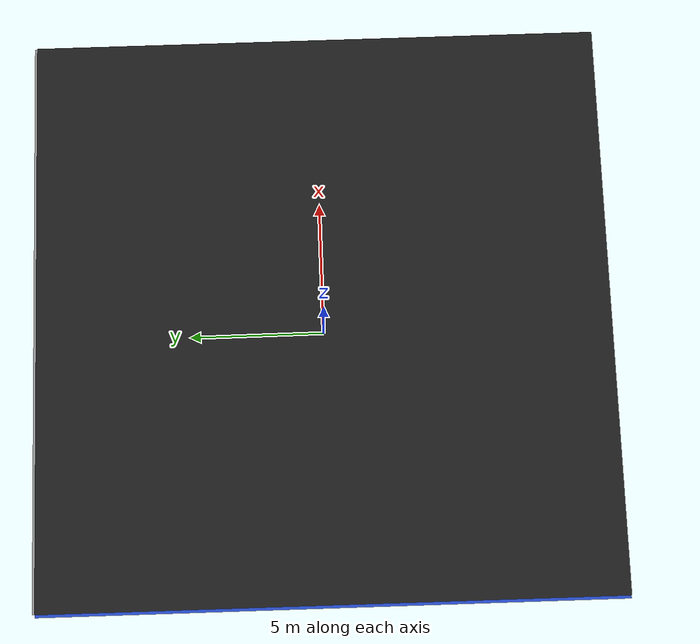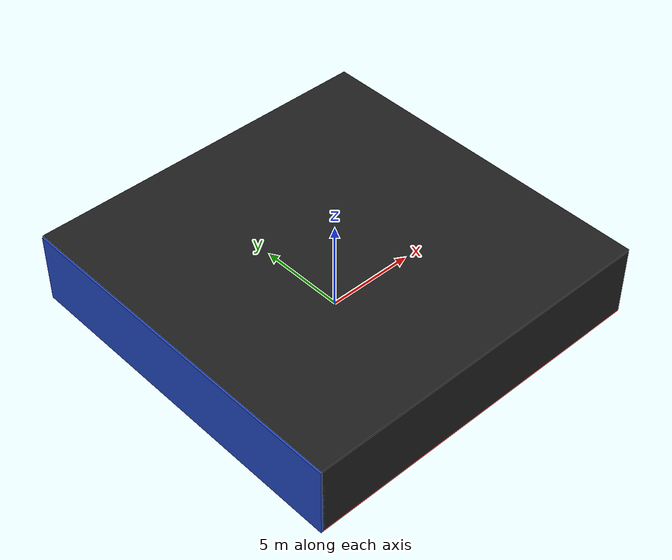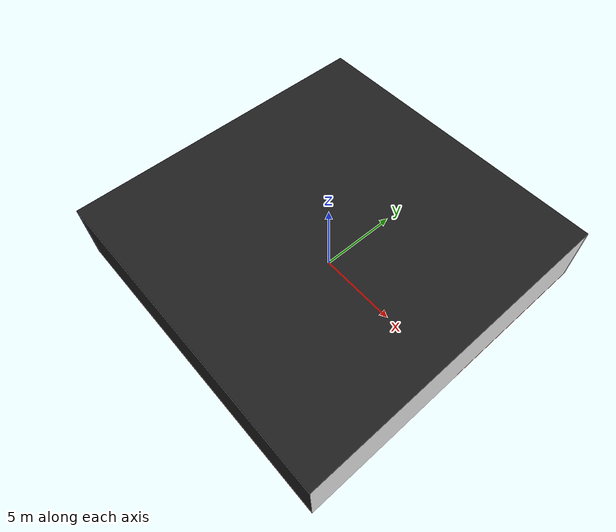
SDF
<sdf version="1.4">
 <world name="default">
  <physics type="ode">
   <max_step_size>0.001</max_step_size>
   <real_time_factor>1</real_time_factor>
   <real_time_update_rate>1000</real_time_update_rate>
   <gravity>0 0 -9.8</gravity>
  </physics>
  <scene><ambient>0.4 0.4 0.4 1</ambient><background>0.7 0.7 0.7 1</background><shadows>1</shadows></scene>
  <model name="Surrounding">
   <static>1</static>
   <link name="Ceiling">
    <collision name="Ceiling_Collision"><geometry><box><size>20 20 0.1</size></box></geometry></collision>
    <visual name="Ceiling_Visual">
     <geometry><box><size>20 20 0.1</size></box></geometry>
     <material>
      <script><uri>file://media/materials/scripts/gazebo.material</uri><name>Gazebo/Black</name></script>
     </material>
    </visual>
    <pose>0 0 4.05 0 0 0</pose>
   </link>
   <link name="Wall_South">
    <collision name="Wall_South_Collision">
     <geometry><box><size>20 0 4</size></box></geometry>
     <pose>0 0 2 0 -0 0</pose>
    </collision>
    <visual name="Wall_South_Visual">
     <pose>0 0 2 0 -0 0</pose>
     <geometry><box><size>20 0 4</size></box></geometry>
     <material>
      <script><uri>file://media/materials/scripts/gazebo.material</uri><name>Gazebo/Black</name></script>
     </material>
    </visual>
    <velocity_decay><linear>0</linear><angular>0</angular></velocity_decay>
    <pose>0 -10 0 0 -0 0</pose>
   </link>
   <link name="Wall_East">
    <collision name="Wall_21_Collision">
     <geometry><box><size>20 0 4</size></box></geometry>
     <pose>0 0 2 0 -0 0</pose>
    </collision>
    <visual name="Wall_21_Visual">
     <pose>0 0 2 0 -0 0</pose>
     <geometry><box><size>20 0 4</size></box></geometry>
     <material>
      <script><uri>file://media/materials/scripts/gazebo.material</uri><name>Gazebo/White</name></script>
     </material>
    </visual>
    <velocity_decay><linear>0</linear><angular>0</angular></velocity_decay>
    <pose>10 0 0 0 -0 1.5708</pose>
   </link>
   <link name="Wall_North">
    <collision name="Wall_22_Collision">
     <geometry><box><size>20 0.2 4</size></box></geometry>
     <pose>0 0 2 0 -0 0</pose>
    </collision>
    <visual name="Wall_22_Visual">
     <pose>0 0 2 0 -0 0</pose>
     <geometry><box><size>20 0.2 4</size></box></geometry>
     <material>
      <script><uri>file://media/materials/scripts/gazebo.material</uri><name>Gazebo/Grey</name></script>
     </material>
    </visual>
    <velocity_decay><linear>0</linear><angular>0</angular></velocity_decay>
    <pose>0 10 0 0 -0 0</pose>
   </link>
   <link name="Wall_West">
    <collision name="Wall_23_Collision">
     <geometry><box><size>20 0.2 4</size></box></geometry>
     <pose>0 0 2 0 -0 0</pose>
    </collision>
    <visual name="Wall_23_Visual">
     <pose>0 0 2 0 -0 0</pose>
     <geometry><box><size>20 0.2 4</size></box></geometry>
     <material>
      <script><uri>file://media/materials/scripts/gazebo.material</uri><name>Gazebo/BlueLaser</name></script>
     </material>
    </visual>
    <velocity_decay><linear>0</linear><angular>0</angular></velocity_decay>
    <pose>-10 0 0 0 0 -1.5708</pose>
   </link>
   <link name="Ground_link">
    <collision name="collision">
     <pose>0 0 .05 0 -0 0</pose>
     <geometry><box><size>20 20 0.1</size></box></geometry>
    </collision>
    <visual name="visual">
     <pose>0 0 .05 0 -0 0</pose>
     <geometry><box><size>20 20 0.1</size></box></geometry>
     <material>
      <script><uri>file://media/materials/scripts/gazebo.material</uri><name>Gazebo/RedGlow</name></script>
     </material>
    </visual>
   </link>
   <static>1</static>
  </model>
  <spherical_coordinates>
   <surface_model>EARTH_WGS84</surface_model>
   <latitude_deg>0</latitude_deg>
   <longitude_deg>0</longitude_deg>
   <elevation>0</elevation>
   <heading_deg>0</heading_deg>
  </spherical_coordinates>
  <light name="lightball_0" type="diffuse">
   <diffuse>0.8 0.8 0.8 1</diffuse>
   <specular>0.2 0.2 0.2 1</specular>
   <attenuation>
    <range>100</range>
    <constant>0.7</constant>
    <linear>0.01</linear>
    <quadratic>0.001</quadratic>
   </attenuation>
   <direction>-0.5 0.1 -0.9</direction>
   <pose>-2.27673790892 1.20863424441 1.21165664984 0 0 0</pose>
  </light>
  <light name="lightball_1" type="diffuse">
   <diffuse>0.8 0.8 0.8 1</diffuse>
   <specular>0.2 0.2 0.2 1</specular>
   <attenuation>
    <range>100</range>
    <constant>0.7</constant>
    <linear>0.01</linear>
    <quadratic>0.001</quadratic>
   </attenuation>
   <direction>-0.5 0.1 -0.9</direction>
   <pose>9.59314793061 2.40807026751 2.60373546382 0 0 0</pose>
  </light>
  <light name="lightball_2" type="diffuse">
   <diffuse>0.8 0.8 0.8 1</diffuse>
   <specular>0.2 0.2 0.2 1</specular>
   <attenuation>
    <range>100</range>
    <constant>0.7</constant>
    <linear>0.01</linear>
    <quadratic>0.001</quadratic>
   </attenuation>
   <direction>-0.5 0.1 -0.9</direction>
   <pose>-6.42912543714 -2.15239914281 0.740031583214 0 0 0</pose>
  </light>
  <light name="lightball_3" type="diffuse">
   <diffuse>0.8 0.8 0.8 1</diffuse>
   <specular>0.2 0.2 0.2 1</specular>
   <attenuation>
    <range>100</range>
    <constant>0.7</constant>
    <linear>0.01</linear>
    <quadratic>0.001</quadratic>
   </attenuation>
   <direction>-0.5 0.1 -0.9</direction>
   <pose>-4.34188245585 1.46914148518 1.07168510542 0 0 0</pose>
  </light>
  <light name="lightball_4" type="diffuse">
   <diffuse>0.8 0.8 0.8 1</diffuse>
   <specular>0.2 0.2 0.2 1</specular>
   <attenuation>
    <range>100</range>
    <constant>0.7</constant>
    <linear>0.01</linear>
    <quadratic>0.001</quadratic>
   </attenuation>
   <direction>-0.5 0.1 -0.9</direction>
   <pose>-8.50341099383 2.8838001336 1.67005057388 0 0 0</pose>
  </light>
  <include><uri>model://cabinet</uri><pose>-8.0082278782 -3.84637327064 0 0 0 1.93179781177</pose></include>
  <include>
   <uri>model://robocup_3Dsim_goal</uri>
   <pose>-7.75467519348 -1.32097057811 0 0 0 0.154306790501</pose>
  </include>
  <include><uri>model://table</uri><pose>-7.99012969512 0.826575309945 0 0 0 0.913204325084</pose></include>
  <include>
   <uri>model://robocup_3Dsim_goal</uri>
   <pose>-5.21608106642 -7.15475548237 0 0 0 1.75397411838</pose>
  </include>
  <include>
   <uri>model://textured_shapes</uri>
   <pose>-5.06609484517 1.20579962994 0 0 0 2.2602524053</pose>
  </include>
  <include><uri>model://cabinet</uri><pose>-5.25436200699 7.62351908011 0 0 0 2.0083694877</pose></include>
  <include><uri>model://table</uri><pose>-0.814906845543 7.47393524737 0 0 0 2.76743930599</pose></include>
  <include><uri>model://cabinet</uri><pose>4.73945304684 -8.21165024 0 0 0 0.0104266752577</pose></include>
  <include>
   <uri>model://construction_cone</uri>
   <pose>4.19268850552 -2.09277339355 0 0 0 0.706675595439</pose>
  </include>
 </world>
</sdf>

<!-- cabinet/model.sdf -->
<sdf version="1.5">
  <model name="cabinet">
    <static>true</static>
    <link name="cabinet_bottom_plate">
      <inertial>
        <pose>0 0 -1 0 0 0</pose>
        <inertia>
          <ixx>2.050000</ixx>
          <ixy>0</ixy>
          <ixz>0</ixz>
          <iyy>2.050000</iyy>
          <iyz>0</iyz>
          <izz>2.050000</izz>
        </inertia>
        <mass>25.000000</mass>
      </inertial>
      <collision name="cabinet_bottom_plate_geom">
        <pose>0 0 0.010000 0 0 0</pose>
        <geometry>
          <box>
            <size>0.450000 0.450000 0.020000</size>
          </box>
        </geometry>
      </collision>
      <visual name="cabinet_bottom_plate_geom_visual">
        <pose>0 0 0.010000 0 0 0</pose>
        <geometry>
          <box>
            <size>0.450000 0.450000 0.020000</size>
          </box>
        </geometry>
        <material>
          <script>
            <uri>model://media/materials/scripts/gazebo.material</uri>
            <name>Gazebo/Wood</name>
          </script>
        </material>
      </visual>
      <collision name="cabinet_bottom_plate_geom_cabinet_back_plate">
        <pose>0.235000 0 0.510000 0 0 0</pose>
        <geometry>
          <box>
            <size>0.020000 0.450000 1.020000</size>
          </box>
        </geometry>
      </collision>
      <visual name="cabinet_bottom_plate_geom_cabinet_back_plate_visual">
        <pose>0.235000 0 0.510000 0 0 0</pose>
        <geometry>
          <box>
            <size>0.020000 0.450000 1.020000</size>
          </box>
        </geometry>
        <material>
          <script>
            <uri>model://media/materials/scripts/gazebo.material</uri>
            <name>Gazebo/Wood</name>
          </script>
        </material>
      </visual>
      <collision name="cabinet_bottom_plate_geom_cabinet_left_plate">
        <pose>0 0.235000 0.510000 0 0 0</pose>
        <geometry>
          <box>
            <size>0.450000 0.020000 1.020000</size>
          </box>
        </geometry>
      </collision>
      <visual name="cabinet_bottom_plate_geom_cabinet_left_plate_visual">
        <pose>0 0.235000 0.510000 0 0 0</pose>
        <geometry>
          <box>
            <size>0.450000 0.020000 1.020000</size>
          </box>
        </geometry>
        <material>
          <script>
            <uri>model://media/materials/scripts/gazebo.material</uri>
            <name>Gazebo/Wood</name>
          </script>
        </material>
      </visual>
      <collision name="cabinet_bottom_plate_geom_cabinet_middle_plate">
        <pose>0 0 0.510000 0 0 0</pose>
        <geometry>
          <box>
            <size>0.450000 0.450000 0.020000</size>
          </box>
        </geometry>
      </collision>
      <visual name="cabinet_bottom_plate_geom_cabinet_middle_plate_visual">
        <pose>0 0 0.510000 0 0 0</pose>
        <geometry>
          <box>
            <size>0.450000 0.450000 0.020000</size>
          </box>
        </geometry>
        <material>
          <script>
            <uri>model://media/materials/scripts/gazebo.material</uri>
            <name>Gazebo/Wood</name>
          </script>
        </material>
      </visual>
      <collision name="cabinet_bottom_plate_geom_cabinet_right_plate">
        <pose>0 -0.235000 0.510000 0 0 0</pose>
        <geometry>
          <box>
            <size>0.450000 0.020000 1.020000</size>
          </box>
        </geometry>
      </collision>
      <visual name="cabinet_bottom_plate_geom_cabinet_right_plate_visual">
        <pose>0 -0.235000 0.510000 0 0 0</pose>
        <geometry>
          <box>
            <size>0.450000 0.020000 1.020000</size>
          </box>
        </geometry>
        <material>
          <script>
            <uri>model://media/materials/scripts/gazebo.material</uri>
            <name>Gazebo/Wood</name>
          </script>
        </material>
      </visual>
      <collision name="cabinet_bottom_plate_geom_cabinet_top_plate">
        <pose>0 0 1.010000 0 0 0</pose>
        <geometry>
          <box>
            <size>0.450000 0.450000 0.020000</size>
          </box>
        </geometry>
      </collision>
      <visual name="cabinet_bottom_plate_geom_cabinet_top_plate_visual">
        <pose>0 0 1.010000 0 0 0</pose>
        <geometry>
          <box>
            <size>0.450000 0.450000 0.020000</size>
          </box>
        </geometry>
        <material>
          <script>
            <uri>model://media/materials/scripts/gazebo.material</uri>
            <name>Gazebo/Wood</name>
          </script>
        </material>
      </visual>
    </link>
  </model>
</sdf>

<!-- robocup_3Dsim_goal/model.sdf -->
<sdf version="1.5">
  <model name="robocup_3d_goal">
    <static>true</static>
    <link name="left_post">
      <pose>0 1.05 0.45 0 0 0</pose>
      <collision name="collision">
        <geometry>
          <cylinder>
            <radius>0.05</radius>
            <length>0.9</length>
          </cylinder>
        </geometry>
      </collision>
      <visual name="visual">
        <geometry>
          <cylinder>
            <radius>0.05</radius>
            <length>0.9</length>
          </cylinder>
        </geometry>
        <material>
          <script>
            <uri>file://media/materials/scripts/gazebo.material</uri>
            <name>Gazebo/ZincYellow</name>
          </script>
        </material>
      </visual>
    </link>
    <link name="left_support_horiz_lower">
      <pose>0.30 1.05 0.01 0 0 0</pose>
      <collision name="collision">
        <geometry>
          <box>
            <size>0.50 0.02 0.02</size>
          </box>
        </geometry>
      </collision>
      <visual name="visual">
        <geometry>
          <box>
            <size>0.50 0.02 0.02</size>
          </box>
        </geometry>
        <material>
          <script>
            <uri>file://media/materials/scripts/gazebo.material</uri>
            <name>Gazebo/White</name>
          </script>
        </material>
      </visual>
    </link>
    <link name="left_support_horiz_upper">
      <pose>0.30 1.05 0.79 0 0 0</pose>
      <collision name="collision">
        <geometry>
          <box>
            <size>0.50 0.02 0.02</size>
          </box>
        </geometry>
      </collision>
      <visual name="visual">
        <geometry>
          <box>
            <size>0.50 0.02 0.02</size>
          </box>
        </geometry>
        <material>
          <script>
            <uri>file://media/materials/scripts/gazebo.material</uri>
            <name>Gazebo/White</name>
          </script>
        </material>
      </visual>
    </link>
    <link name="left_support_vertical">
      <pose>0.56 1.05 0.4 0 1.5708 0</pose>
      <collision name="collision">
        <geometry>
          <box>
            <size>0.80 0.02 0.02</size>
          </box>
        </geometry>
      </collision>
      <visual name="visual">
        <geometry>
          <box>
            <size>0.80 0.02 0.02</size>
          </box>
        </geometry>
        <material>
          <script>
            <uri>file://media/materials/scripts/gazebo.material</uri>
            <name>Gazebo/White</name>
          </script>
        </material>
      </visual>
    </link>
    <link name="right_support_horiz_lower">
      <pose>0.30 -1.05 0.01 0 0 0</pose>
      <collision name="collision">
        <geometry>
          <box>
            <size>0.50 0.02 0.02</size>
          </box>
        </geometry>
      </collision>
      <visual name="visual">
        <geometry>
          <box>
            <size>0.50 0.02 0.02</size>
          </box>
        </geometry>
        <material>
          <script>
            <uri>file://media/materials/scripts/gazebo.material</uri>
            <name>Gazebo/White</name>
          </script>
        </material>
      </visual>
    </link>
    <link name="right_support_horiz_upper">
      <pose>0.30 -1.05 0.79 0 0 0</pose>
      <collision name="collision">
        <geometry>
          <box>
            <size>0.50 0.02 0.02</size>
          </box>
        </geometry>
      </collision>
      <visual name="visual">
        <geometry>
          <box>
            <size>0.50 0.02 0.02</size>
          </box>
        </geometry>
        <material>
          <script>
            <uri>file://media/materials/scripts/gazebo.material</uri>
            <name>Gazebo/White</name>
          </script>
        </material>
      </visual>
    </link>
    <link name="right_support_vertical">
      <pose>0.56 -1.05 0.4 0 1.5708 0</pose>
      <collision name="collision">
        <geometry>
          <box>
            <size>0.80 0.02 0.02</size>
          </box>
        </geometry>
      </collision>
      <visual name="visual">
        <geometry>
          <box>
            <size>0.80 0.02 0.02</size>
          </box>
        </geometry>
        <material>
          <script>
            <uri>file://media/materials/scripts/gazebo.material</uri>
            <name>Gazebo/White</name>
          </script>
        </material>
      </visual>
    </link>
    <link name="center_support_horiz_lower">
      <pose>0.56 0 0.01 0 1.5708 0</pose>
      <collision name="collision">
        <geometry>
          <box>
            <size>0.02 2.08 0.02</size>
          </box>
        </geometry>
      </collision>
      <visual name="visual">
        <geometry>
          <box>
            <size>0.02 2.08 0.02</size>
          </box>
        </geometry>
        <material>
          <script>
            <uri>file://media/materials/scripts/gazebo.material</uri>
            <name>Gazebo/White</name>
          </script>
        </material>
      </visual>
    </link>
    <link name="center_support_horiz_upper">
      <pose>0.56 0 0.79 0 1.5708 0</pose>
      <collision name="collision">
        <geometry>
          <box>
            <size>0.02 2.08 0.02</size>
          </box>
        </geometry>
      </collision>
      <visual name="visual">
        <geometry>
          <box>
            <size>0.02 2.08 0.02</size>
          </box>
        </geometry>
        <material>
          <script>
            <uri>file://media/materials/scripts/gazebo.material</uri>
            <name>Gazebo/White</name>
          </script>
        </material>
      </visual>
    </link>
    <link name="right_post">
      <pose>0 -1.05 0.45 0 0 0</pose>
      <collision name="collision">
        <geometry>
          <cylinder>
            <radius>0.05</radius>
            <length>0.9</length>
          </cylinder>
        </geometry>
      </collision>
      <visual name="visual">
        <geometry>
          <cylinder>
            <radius>0.05</radius>
            <length>0.9</length>
          </cylinder>
        </geometry>
        <material>
          <script>
            <uri>file://media/materials/scripts/gazebo.material</uri>
            <name>Gazebo/ZincYellow</name>
          </script>
        </material>
      </visual>
    </link>
    <link name="crossbar">
      <pose>0 0 0.85 1.57 1.57 0</pose>
      <collision name="collision">
        <geometry>
          <cylinder>
            <radius>0.05</radius>
            <length>2.0</length>
          </cylinder>
        </geometry>
      </collision>
      <visual name="visual">
        <geometry>
          <cylinder>
            <radius>0.05</radius>
            <length>2.0</length>
          </cylinder>
        </geometry>
        <material>
          <script>
            <uri>file://media/materials/scripts/gazebo.material</uri>
            <name>Gazebo/ZincYellow</name>
          </script>
        </material>
      </visual>
    </link>
    <link name="center_net">
      <pose>0.56 0 0.40 0 0 0</pose>
      <collision name="collision">
        <geometry>
          <box>
            <size>0.01 2.1 0.80</size>
          </box>
        </geometry>
      </collision>
      <visual name="visual">
        <geometry>
          <box>
            <size>0.01 2.1 0.80</size>
          </box>
        </geometry>
        <material>
          <script>
            <uri>model://../model_source/models/robocup09_spl_field/materials/scripts/</uri>
            <uri>model://../model_source/models/robocup09_spl_field/materials/textures/</uri>
            <name>RoboCup/Net</name>
          </script>
        </material>
      </visual>
    </link>
    <link name="left_net">
      <pose>0.30 1.05 0.40 0 0 0</pose>
      <collision name="collision">
        <geometry>
          <box>
            <size>0.50 0.01 0.76</size>
          </box>
        </geometry>
      </collision>
      <visual name="visual">
        <geometry>
          <box>
            <size>0.50 0.01 0.76</size>
          </box>
        </geometry>
        <material>
          <script>
            <uri>model://../model_source/models/robocup09_spl_field/materials/scripts/</uri>
            <uri>model://../model_source/models/robocup09_spl_field/materials/textures/</uri>
            <name>RoboCup/Net</name>
          </script>
        </material>
      </visual>
    </link>
    <link name="right_net">
      <pose>0.30 -1.05 0.40 0 0 0</pose>
      <collision name="collision">
        <geometry>
          <box>
            <size>0.50 0.01 0.76</size>
          </box>
        </geometry>
      </collision>
      <visual name="visual">
        <geometry>
          <box>
            <size>0.50 0.01 0.76</size>
          </box>
        </geometry>
        <material>
          <script>
            <uri>model://../model_source/models/robocup09_spl_field/materials/scripts/</uri>
            <uri>model://../model_source/models/robocup09_spl_field/materials/textures/</uri>
            <name>RoboCup/Net</name>
          </script>
        </material>
      </visual>
    </link>
  </model>
</sdf>

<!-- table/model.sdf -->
<sdf version="1.5">
  <model name="table">
    <static>true</static>
    <link name="link">
      <collision name="surface">
        <pose>0 0 1.0 0 0 0</pose>
        <geometry>
          <box>
            <size>1.5 0.8 0.03</size>
          </box>
        </geometry>
        <surface>
          <friction>
            <ode>
              <mu>0.6</mu>
              <mu2>0.6</mu2>
            </ode>
          </friction>
        </surface>
      </collision>
      <visual name="visual1">
        <pose>0 0 1.0 0 0 0</pose>
        <geometry>
          <box>
            <size>1.5 0.8 0.03</size>
          </box>
        </geometry>
        <material>
          <script>
            <uri>model://media/materials/scripts/gazebo.material</uri>
            <name>Gazebo/Wood</name>
          </script>
        </material>
      </visual>
      <collision name="front_left_leg">
        <pose>0.68 0.38 0.5 0 0 0</pose>
        <geometry>
          <cylinder>
            <radius>0.02</radius>
            <length>1.0</length>
          </cylinder>
        </geometry>
      </collision>
      <visual name="front_left_leg">
        <pose>0.68 0.38 0.5 0 0 0</pose>
        <geometry>
          <cylinder>
            <radius>0.02</radius>
            <length>1.0</length>
          </cylinder>
        </geometry>
        <material>
          <script>
            <uri>model://media/materials/scripts/gazebo.material</uri>
            <name>Gazebo/Grey</name>
          </script>
        </material>
      </visual>
      <collision name="front_right_leg">
        <pose>0.68 -0.38 0.5 0 0 0</pose>
        <geometry>
          <cylinder>
            <radius>0.02</radius>
            <length>1.0</length>
          </cylinder>
        </geometry>
      </collision>
      <visual name="front_right_leg">
        <pose>0.68 -0.38 0.5 0 0 0</pose>
        <geometry>
          <cylinder>
            <radius>0.02</radius>
            <length>1.0</length>
          </cylinder>
        </geometry>
        <material>
          <script>
            <uri>model://media/materials/scripts/gazebo.material</uri>
            <name>Gazebo/Grey</name>
          </script>
        </material>
      </visual>
      <collision name="back_right_leg">
        <pose>-0.68 -0.38 0.5 0 0 0</pose>
        <geometry>
          <cylinder>
            <radius>0.02</radius>
            <length>1.0</length>
          </cylinder>
        </geometry>
      </collision>
      <visual name="back_right_leg">
        <pose>-0.68 -0.38 0.5 0 0 0</pose>
        <geometry>
          <cylinder>
            <radius>0.02</radius>
            <length>1.0</length>
          </cylinder>
        </geometry>
        <material>
          <script>
            <uri>model://media/materials/scripts/gazebo.material</uri>
            <name>Gazebo/Grey</name>
          </script>
        </material>
      </visual>
      <collision name="back_left_leg">
        <pose>-0.68 0.38 0.5 0 0 0</pose>
        <geometry>
          <cylinder>
            <radius>0.02</radius>
            <length>1.0</length>
          </cylinder>
        </geometry>
      </collision>
      <visual name="back_left_leg">
        <pose>-0.68 0.38 0.5 0 0 0</pose>
        <geometry>
          <cylinder>
            <radius>0.02</radius>
            <length>1.0</length>
          </cylinder>
        </geometry>
        <material>
          <script>
            <uri>model://media/materials/scripts/gazebo.material</uri>
            <name>Gazebo/Grey</name>
          </script>
        </material>
      </visual>
    </link>
  </model>
</sdf>

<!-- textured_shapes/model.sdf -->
<sdf version="1.6">
  <model name="textured_shapes">
    <pose>0 0 0.5 0 0 0</pose>
    <link name="box">
      <pose>0 -1.5 0 0 0 0</pose>
      <collision name="collision">
        <geometry>
          <box>
            <size>1 1 1</size>
          </box>
        </geometry>
      </collision>
      <visual name="visual">
        <geometry>
          <box>
            <size>1 1 1</size>
          </box>
        </geometry>
        <material>
          <script>
            <uri>model://../model_source/models/textured_shapes/materials/scripts</uri>
            <uri>model://../model_source/models/textured_shapes/materials/textures</uri>
            <name>TexturedShape/Squares</name>
          </script>
        </material>
      </visual>
    </link>
    <link name="sphere">
      <collision name="collision">
        <geometry>
          <sphere>
            <radius>0.5</radius>
          </sphere>
        </geometry>
      </collision>
      <visual name="visual">
        <geometry>
          <sphere>
            <radius>0.5</radius>
          </sphere>
        </geometry>
        <material>
          <script>
            <uri>model://../model_source/models/textured_shapes/materials/scripts</uri>
            <uri>model://../model_source/models/textured_shapes/materials/textures</uri>
            <name>TexturedShape/Squares</name>
          </script>
        </material>
      </visual>
    </link>
    <link name="cylinder">
      <pose>0 1.5 0 0 0 0</pose>
      <collision name="collision">
        <geometry>
          <cylinder>
            <radius>0.5</radius>
            <length>1</length>
          </cylinder>
        </geometry>
      </collision>
      <visual name="visual">
        <geometry>
          <cylinder>
            <radius>0.5</radius>
            <length>1</length>
          </cylinder>
        </geometry>
        <material>
          <script>
            <uri>model://../model_source/models/textured_shapes/materials/scripts</uri>
            <uri>model://../model_source/models/textured_shapes/materials/textures</uri>
            <name>TexturedShape/Squares</name>
          </script>
        </material>
      </visual>
    </link>
  </model>
</sdf>

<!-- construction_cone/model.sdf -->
<sdf version="1.5">
  <model name="Construction Cone">
    <link name="link">
      <collision name="collision">
        <geometry>
          <mesh>
            <scale>10 10 10</scale>
            <uri>file://isr-testbed/construction_cone/meshes/construction_cone.dae</uri>
          </mesh>
        </geometry>
      </collision>
      <visual name="visual">
        <geometry>
          <mesh>
            <scale>10 10 10</scale>
            <uri>file://isr-testbed/construction_cone/meshes/construction_cone.dae</uri>
          </mesh>
        </geometry>
      </visual>
    </link>
  </model>
</sdf>
